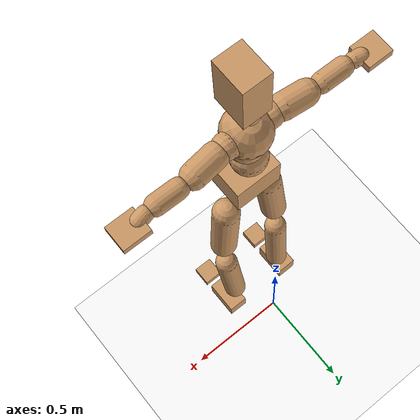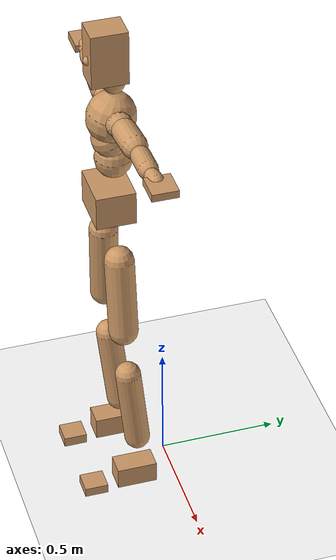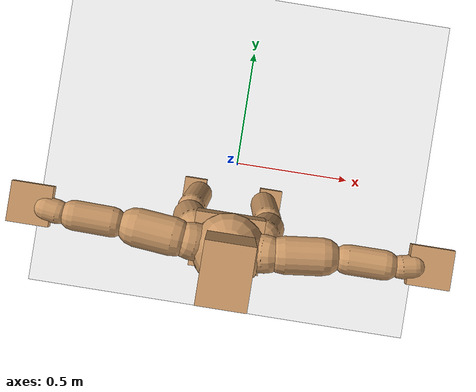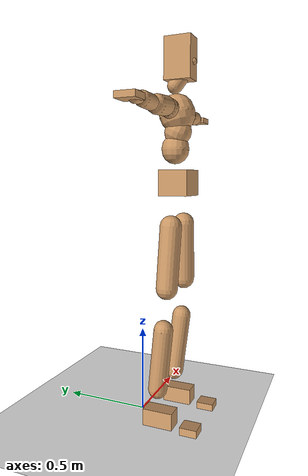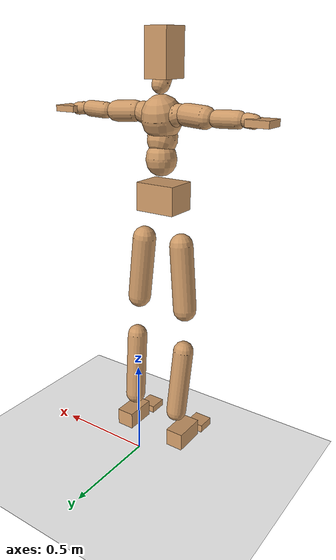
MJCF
<mujoco model="humanoid">
  <option integrator="implicitfast" />

  <visual>
    <global offwidth="1280" offheight="960" />
    <headlight active="1" ambient="0.34 0.34 0.34" diffuse="0.5 0.5 0.5" />
  </visual>

  <default>
    <joint damping="2" stiffness="2" armature="0.01" limited="true" solimplimit="0 .99 .01" />
    <geom condim="1" friction="0.7 0.005 0.0001" solimp=".99 .99 .003" solref="0.015 1" margin="0.001" rgba="0.8 0.6 .4 1" />
    <default class="smplcontact">
      <geom condim="3" friction="1. 0.005 0.0001" solref="0.015 1" solimp="0.98 0.98 0.001" priority="1" />
    </default>
    <default class="stiff_medium">
      <joint stiffness="10" />
    </default>
    <default class="stiff_medium_higher">
      <joint stiffness="50" />
    </default>
    <default class="stiff_high">
      <joint stiffness="100" />
    </default>
  </default>

  <asset>
    <texture type="skybox" builtin="gradient" rgb1="0.99 0.99 0.99" rgb2="0.608 0.828 0.892" width="100" />
    <texture builtin="flat" height="1278" mark="cross" markrgb="1 1 1" name="texgeom" random="0.01" rgb1="0.8 0.6 0.4" rgb2="0.8 0.6 0.4" type="cube" width="127" />
    <texture name="texplane" type="2d" builtin="checker" markrgb="1 1 1" rgb1="0.756 0.772 0.76" rgb2="0.6 0.6 0.6" width="100" height="100" />
    <material name="MatPlane" reflectance="0.5" texture="texplane" texrepeat="1 1" texuniform="true" />
    <material name="geom" texture="texgeom" texuniform="true" />
  </asset>

  <worldbody>
    <light name="tracking_light" pos="0 0 7" dir="0 0 -1" directional="true" cutoff="100" exponent="1" diffuse="1 1 1" specular="0.1 0.1 0.1" mode="trackcom" />
    <camera name="back" pos="0 3 2.4" xyaxes="-1 0 0 0 -1 2" mode="trackcom" />
    <camera name="side" pos="-3 0 2.4" xyaxes="0 -1 0 1 0 2" mode="trackcom" />
    <camera name="front_side" pos="-2.8 -2.8 0.8" xyaxes="0.5 -0.5 0 0.1 0.1 1" mode="trackcom" />
    <geom condim="3" name="floor" pos="0 0 0" rgba="1 1 1 1" size="100 100 .2" type="plane" material="MatPlane" />
    <body name="Pelvis" pos="-0.0018 -0.2233 1.39425" euler="90 0 0">
      <site name="Pelvis" size="0.01" />
      <freejoint name="Pelvis" />
      <geom type="box" pos="-0.0000 -0.0121 -0.0055" size="0.1069 0.0722 0.083" quat="1.0000 0.0000 0.0000 0.0000" density="3165.830099" name="Pelvis" />
      <body name="L_Hip" pos="0.10425 -0.1371 -0.0102">
        <joint name="L_Hip_x" type="hinge" pos="0 0 0" axis="1 0 0" stiffness="20.015620714285713" range="-160.0 22.92" class="stiff_medium" damping="35.83287359117287" armature="0.02851095036953482"/>
        <joint name="L_Hip_y" type="hinge" pos="0 0 0" axis="0 1 0" stiffness="19.866269693877552" range="-70.0 70.0" class="stiff_medium" damping="19.51687813836926" armature="0.019173631393182268"/>
        <joint name="L_Hip_z" type="hinge" pos="0 0 0" axis="0 0 1" stiffness="19.87905693877551" range="-28.65 90.0" class="stiff_medium" damping="23.812563344986483" armature="0.028524400066129184"/>
        <geom type="capsule" density="2040.816327" fromto="0.01035 -0.1125 -0.00135 0.0411 -0.4503 -0.0054" size="0.0615" name="L_Hip" />
        <body name="L_Knee" pos="0.05145 -0.5628 -0.00675">
          <joint name="L_Knee_x" type="hinge" pos="0 0 0" axis="1 0 0" range="-5.16 171.89" damping="17.990881080600367" armature="0.0263964285619257" stiffness="3.8318607346938776"/>
          <joint name="L_Knee_y" type="hinge" pos="0 0 0" axis="0 1 0" range="-4.58 6.88" damping="14.933138115539817" armature="0.017722990590982583" stiffness="3.932015113945578"/>
          <joint name="L_Knee_z" type="hinge" pos="0 0 0" axis="0 0 1" range="-6.88 4.58" damping="17.905219969869158" armature="0.02645515953053642" stiffness="3.7870318571428574"/>
          <geom type="capsule" density="1234.567901" fromto="-0.00405 -0.1194 -0.01305 -0.01635 -0.4776 -0.0525" size="0.0541" name="L_Knee" />
          <body name="L_Ankle" pos="-0.0204 -0.597 -0.06555">
            <joint name="L_Ankle_x" type="hinge" pos="0 0 0" axis="1 0 0" range="-45.84 45.84" class="stiff_medium" damping="9.919510798854759" armature="0.018221610090480775" stiffness="15.0"/>
            <joint name="L_Ankle_y" type="hinge" pos="0 0 0" axis="0 1 0" range="-74.48 22.92" class="stiff_medium" damping="4.917952818000751" armature="0.017915748088949288" stiffness="15.0"/>
            <joint name="L_Ankle_z" type="hinge" pos="0 0 0" axis="0 0 1" range="-4.58 4.58" class="stiff_medium" damping="9.269968981325242" armature="0.01591339350272818" stiffness="15.0"/>
            <geom type="box" pos="0.03495 -0.03585 0.0363" size="0.0483 0.0464 0.085" quat="1.0000 0.0000 0.0000 0.0000" density="449.071558" name="L_Ankle" class="smplcontact" />
            <body name="L_Toe" pos="0.0396 -0.0837 0.17895">
              <joint name="L_Toe_x" type="hinge" pos="0 0 0" axis="1 0 0" range="-91.67 22.92" armature="0.014752348892847546" damping="2.975131818207141" stiffness="3.0"/>
              <joint name="L_Toe_y" type="hinge" pos="0 0 0" axis="0 1 0" range="-4.58 4.58" armature="0.013348413454862132" damping="2.8300261611718858" stiffness="3.0"/>
              <joint name="L_Toe_z" type="hinge" pos="0 0 0" axis="0 0 1" range="-4.58 4.58" armature="0.010509731565731132" damping="2.5111429547994035" stiffness="3.0"/>
              <geom type="box" pos="-0.0045 0.00825 0.0372" size="0.0478 0.02 0.0496" quat="1.0000 0.0000 0.0000 0.0000" density="423.206892" name="L_Toe" class="smplcontact" />
            </body>
          </body>
        </body>
      </body>
      <body name="R_Hip" pos="-0.10155 -0.13575 -0.00645">
        <joint name="R_Hip_x" type="hinge" pos="0 0 0" axis="1 0 0" stiffness="20.015620714285713" range="-160.0 22.92" class="stiff_medium" damping="35.83287359117287" armature="0.02851095036953482"/>
        <joint name="R_Hip_y" type="hinge" pos="0 0 0" axis="0 1 0" stiffness="19.866269693877552" range="-70.0 70.0" class="stiff_medium" damping="19.51687813836926" armature="0.019173631393182268"/>
        <joint name="R_Hip_z" type="hinge" pos="0 0 0" axis="0 0 1" stiffness="19.87905693877551" range="-90.0 28.65" class="stiff_medium" damping="23.812563344986483" armature="0.028524400066129184"/>
        <geom type="capsule" density="2040.816327" fromto="-0.01155 -0.11475 -0.0027 -0.0459 -0.45915 -0.01065" size="0.0606" name="R_Hip" />
        <body name="R_Knee" pos="-0.05745 -0.5739 -0.01335">
          <joint name="R_Knee_x" type="hinge" pos="0 0 0" axis="1 0 0" range="-5.16 171.89" damping="17.990881080600367" armature="0.0263964285619257" stiffness="3.8318607346938776"/>
          <joint name="R_Knee_y" type="hinge" pos="0 0 0" axis="0 1 0" range="-6.88 4.58" damping="14.933138115539817" armature="0.017722990590982583" stiffness="3.932015113945578"/>
          <joint name="R_Knee_z" type="hinge" pos="0 0 0" axis="0 0 1" range="-4.58 6.88" damping="17.905219969869158" armature="0.02645515953053642" stiffness="3.7870318571428574"/>
          <geom type="capsule" density="1234.567901" fromto="0.0048 -0.11955 -0.01275 0.0189 -0.47805 -0.0507" size="0.0541" name="R_Knee" />
          <body name="R_Ankle" pos="0.0237 -0.5976 -0.06345">
            <joint name="R_Ankle_x" type="hinge" pos="0 0 0" axis="1 0 0" range="-45.84 45.84" class="stiff_medium" damping="9.919510798854759" armature="0.018221610090480775" stiffness="15.0"/>
            <joint name="R_Ankle_y" type="hinge" pos="0 0 0" axis="0 1 0" range="-22.92 74.48" class="stiff_medium" damping="4.917952818000751" armature="0.017915748088949288" stiffness="15.0"/>
            <joint name="R_Ankle_z" type="hinge" pos="0 0 0" axis="0 0 1" range="-4.58 4.58" class="stiff_medium" damping="9.269968981325242" armature="0.01591339350272818" stiffness="15.0"/>
            <geom type="box" pos="-0.0318 -0.0261 0.0384" size="0.0483 0.0478 0.0865" quat="1.0000 0.0000 0.0000 0.0000" density="434.700981" name="R_Ankle" class="smplcontact" />
            <body name="R_Toe" pos="-0.0381 -0.07215 0.18495">
              <joint name="R_Toe_x" type="hinge" pos="0 0 0" axis="1 0 0" range="-91.67 22.92" armature="0.014752348892847546" damping="2.975131818207141" stiffness="3.0"/>
              <joint name="R_Toe_y" type="hinge" pos="0 0 0" axis="0 1 0" range="-4.58 4.58" armature="0.013348413454862132" damping="2.8300261611718858" stiffness="3.0"/>
              <joint name="R_Toe_z" type="hinge" pos="0 0 0" axis="0 0 1" range="-4.58 4.58" armature="0.010509731565731132" damping="2.5111429547994035" stiffness="3.0"/>
              <geom type="box" pos="0.0063 0.00675 0.03405" size="0.0479 0.0216 0.0493" quat="1.0000 0.0000 0.0000 0.0000" density="407.384095" name="R_Toe" class="smplcontact" />
            </body>
          </body>
        </body>
      </body>
      <body name="Torso" pos="-0.0025 0.109 -0.0267">
        <joint name="Torso_x" type="hinge" pos="0 0 0" axis="1 0 0" range="-25.78 57.3" class="stiff_medium" damping="13.296564125699913" armature="0.008717287887859698" stiffness="9.01394612244898"/>
        <joint name="Torso_y" type="hinge" pos="0 0 0" axis="0 1 0" range="-57.3 57.3" class="stiff_high" damping="11.857975578739207" armature="0.003844721181114158" stiffness="91.43158775510203"/>
        <joint name="Torso_z" type="hinge" pos="0 0 0" axis="0 0 1" range="-34.38 34.38" class="stiff_high" damping="16.193220219297853" armature="0.007045583299802339" stiffness="93.0442413043478"/>
        <geom type="capsule" density="2040.816327" fromto="0.0025 0.0608 0.0005 0.003 0.0743 0.0006" size="0.0769" name="Torso" />
        <body name="Spine" pos="0.0055 0.1352 0.0011">
          <joint name="Spine_x" type="hinge" pos="0 0 0" axis="1 0 0" stiffness="8.855082083333333" range="-25.78 57.3" class="stiff_medium" damping="13.07679767745399" armature="0.008582774445870411"/>
          <joint name="Spine_y" type="hinge" pos="0 0 0" axis="0 1 0" stiffness="8.966550425531915" range="-57.3 57.3" class="stiff_high" damping="4.670538649446805" armature="0.0038012687155206805"/>
          <joint name="Spine_z" type="hinge" pos="0 0 0" axis="0 0 1" stiffness="17.399179999999998" range="-34.38 34.38" class="stiff_high" damping="8.612389288095054" armature="0.0059208768307291906"/>
          <geom type="capsule" density="2040.816327" fromto="0.0007 0.0238 0.0114 0.0008 0.0291 0.014" size="0.0755" name="Spine" />
          <body name="Chest" pos="0.0015 0.0529 0.0254">
            <joint name="Chest_x" type="hinge" pos="0 0 0" axis="1 0 0" stiffness="8.445605217391304" range="-25.78 57.3" class="stiff_medium" damping="12.72528360118801" armature="0.008521609816255427"/>
            <joint name="Chest_y" type="hinge" pos="0 0 0" axis="0 1 0" stiffness="7.416513142857141" range="-57.3 57.3" class="stiff_high" damping="4.235867490218071" armature="0.0037801147775485618"/>
            <joint name="Chest_z" type="hinge" pos="0 0 0" axis="0 0 1" stiffness="17.461715111111108" range="-34.38 34.38" class="stiff_high" damping="8.265316118618488" armature="0.005433748608980236"/>
            <geom type="capsule" density="2040.816327" fromto="-0.0009 0.0682 -0.0173 -0.001 0.0833 -0.0212" size="0.1002" name="Chest" />
            <body name="Neck" pos="-0.0028 0.2139 -0.0429">
              <joint name="Neck_x" type="hinge" pos="0 0 0" axis="1 0 0" range="-28.65 57.3" class="stiff_medium_higher" damping="9.999999999999986" armature="0.00999999999999997" stiffness="50.0"/>
              <joint name="Neck_y" type="hinge" pos="0 0 0" axis="0 1 0" range="-40.11 40.11" class="stiff_medium_higher" damping="10.0" armature="0.01" stiffness="50.0"/>
              <joint name="Neck_z" type="hinge" pos="0 0 0" axis="0 0 1" range="-40.11 40.11" class="stiff_medium_higher" damping="10.00000000000001" armature="0.010000000000000024" stiffness="50.0"/>
              <geom type="capsule" density="1000" fromto="0.001 0.013 0.0103 0.0041 0.052 0.0411" size="0.0436" name="Neck" />
              <body name="Head" pos="0.0052 0.065 0.0513">
                <joint name="Head_x" type="hinge" pos="0 0 0" axis="1 0 0" range="-28.65 57.3" class="stiff_medium_higher" damping="2.000000000000001" armature="0.010000000000000009" stiffness="50.0"/>
                <joint name="Head_y" type="hinge" pos="0 0 0" axis="0 1 0" range="-40.11 40.11" class="stiff_medium_higher" damping="2.0" armature="0.01" stiffness="50.0"/>
                <joint name="Head_z" type="hinge" pos="0 0 0" axis="0 0 1" range="-40.11 40.11" class="stiff_medium_higher" damping="2.0000000000000093" armature="0.010000000000000094" stiffness="50.0"/>
                <geom type="box" pos="-0.0042 0.0876 -0.0116" size="0.0606 0.1154 0.076" quat="1.0000 0.0000 0.0000 0.0000" density="1018.069894" name="Head" />
                <geom type="capsule" name="nose" size="0.02 0.01" pos="0 0.07 0.05" quat="1 0 0 0" mass="0" contype="0" conaffinity="0" />
              </body>
            </body>
            <body name="L_Thorax" pos="0.052205 0.0806262 -0.0225912">
              <joint name="L_Thorax_x" type="hinge" pos="0 0 0" axis="1 0 0" range="-10.89 4.58" class="stiff_medium_higher" damping="10.752161019344701" armature="0.005492534491244019" stiffness="26.310478061224497"/>
              <joint name="L_Thorax_y" type="hinge" pos="0 0 0" axis="0 1 0" range="-28.65 17.19" class="stiff_medium_higher" damping="8.656507675839674" armature="0.003599090918613797" stiffness="26.025712755102038"/>
              <joint name="L_Thorax_z" type="hinge" pos="0 0 0" axis="0 0 1" range="-31.51 40.11" class="stiff_medium_higher" damping="8.654936190408641" armature="0.003597349455452552" stiffness="26.02885867346939"/>
              <geom type="capsule" density="1000" fromto="0.0120575 0.00404125 -0.0011925 0.04823 0.016165 -0.00470375" size="0.0521" name="L_Thorax" />
              <body name="L_Shoulder" pos="0.0602875 0.0202062 -0.00589625">
                <joint name="L_Shoulder_x" type="hinge" pos="0 0 0" axis="1 0 0" range="-97.4 97.4" class="stiff_medium" damping="3.4355706113714275" armature="0.00618147417805869" stiffness="5.3039961224489796"/>
                <joint name="L_Shoulder_y" type="hinge" pos="0 0 0" axis="0 1 0" range="-108.86 80.21" class="stiff_medium" damping="2.619467278569036" armature="0.0036469302510571877" stiffness="5.226319999999999"/>
                <joint name="L_Shoulder_z" type="hinge" pos="0 0 0" axis="0 0 1" range="-97.4 85.94" class="stiff_medium" damping="2.6197349169276207" armature="0.003644479893049839" stiffness="5.230902653061225"/>
                <geom type="capsule" density="1000" fromto="0.0343837 -0.0017225 -0.00364375 0.137601 -0.0067575 -0.014575" size="0.0517" name="L_Shoulder" />
                <body name="L_Elbow" pos="0.171985 -0.00848 -0.0182187">
                  <joint name="L_Elbow_x" type="hinge" pos="0 0 0" axis="1 0 0" range="-17.19 4.58" damping="3.1785577743546716" armature="0.007393662378868674" stiffness="1.0931772653061227"/>
                  <joint name="L_Elbow_y" type="hinge" pos="0 0 0" axis="0 1 0" range="-180.0 17.19" damping="2.3033030607353284" armature="0.003885042260915374" stiffness="1.0924370204081633"/>
                  <joint name="L_Elbow_z" type="hinge" pos="0 0 0" axis="0 0 1" range="-100.84 4.58" damping="2.3008114328593727" armature="0.003872178345233718" stiffness="1.0936961632653062"/>
                  <geom type="capsule" density="1000" fromto="0.0329925 0.0011925 -0.0001325 0.132102 0.00477 -0.00059625" size="0.0405" name="L_Elbow" />
                  <body name="L_Wrist" pos="0.165095 0.0059625 -0.000795">
                    <joint name="L_Wrist_x" type="hinge" pos="0 0 0" axis="1 0 0" range="-180.0 22.92" armature="0.008001427855742892" damping="1.4109622696559756" stiffness="1.2440370408163264"/>
                    <joint name="L_Wrist_y" type="hinge" pos="0 0 0" axis="0 1 0" range="-17.19 17.19" armature="0.004879471429003507" damping="1.0965644446974563" stiffness="1.2321555714285712"/>
                    <joint name="L_Wrist_z" type="hinge" pos="0 0 0" axis="0 0 1" range="-22.92 22.92" armature="0.004698864868438875" damping="1.0781698402208924" stiffness="1.2369478979591837"/>
                    <geom type="capsule" density="1000" fromto="0.01113 -0.00106 -0.0019875 0.04452 -0.00430625 -0.00795" size="0.0318" name="L_Wrist" class="smplcontact" />
                    <body name="L_Hand" pos="0.05565 -0.0054325 -0.00987125">
                      <joint name="L_Hand_x" type="hinge" pos="0 0 0" axis="1 0 0" range="-17.19 17.19" armature="0.00975555299620373" damping="1.6078618449167639" stiffness="1.3249990612244895"/>
                      <joint name="L_Hand_y" type="hinge" pos="0 0 0" axis="0 1 0" range="-51.57 51.57" armature="0.007043747166286243" damping="1.3662326477640614" stiffness="1.3249990408163264"/>
                      <joint name="L_Hand_z" type="hinge" pos="0 0 0" axis="0 0 1" range="-91.67 91.67" armature="0.006320878329522906" damping="1.2942300773617896" stiffness="1.3249989999999998"/>
                      <geom type="box" pos="0.0326612 0.0006625 -0.0038425" size="0.0585 0.0158 0.0538" quat="1.0000 0.0000 0.0000 0.0000" density="400.552564" name="L_Hand" class="smplcontact" />
                    </body>
                  </body>
                </body>
              </body>
            </body>
            <body name="R_Thorax" pos="-0.0541925 0.078705 -0.0255725">
              <joint name="R_Thorax_x" type="hinge" pos="0 0 0" axis="1 0 0" range="-10.89 4.58" class="stiff_medium_higher" damping="10.752161019344701" armature="0.005492534491244019" stiffness="26.310478061224497"/>
              <joint name="R_Thorax_y" type="hinge" pos="0 0 0" axis="0 1 0" range="-17.19 28.65" class="stiff_medium_higher" damping="8.656507675839674" armature="0.003599090918613797" stiffness="26.025712755102038"/>
              <joint name="R_Thorax_z" type="hinge" pos="0 0 0" axis="0 0 1" range="-40.11 31.51" class="stiff_medium_higher" damping="8.654936190408641" armature="0.003597349455452552" stiffness="26.02885867346939"/>
              <geom type="capsule" density="1000" fromto="-0.01272 0.00430625 -0.0011925 -0.05088 0.017225 -0.00483625" size="0.0511" name="R_Thorax" />
              <body name="R_Shoulder" pos="-0.0636 0.0215975 -0.00602875">
                <joint name="R_Shoulder_x" type="hinge" pos="0 0 0" axis="1 0 0" range="-97.4 97.4" class="stiff_medium" damping="3.4355706113714275" armature="0.00618147417805869" stiffness="5.3039961224489796"/>
                <joint name="R_Shoulder_y" type="hinge" pos="0 0 0" axis="0 1 0" range="-80.21 108.86" class="stiff_medium" damping="2.619467278569036" armature="0.0036469302510571877" stiffness="5.226319999999999"/>
                <joint name="R_Shoulder_z" type="hinge" pos="0 0 0" axis="0 0 1" range="-85.94 97.4" class="stiff_medium" damping="2.6197349169276207" armature="0.003644479893049839" stiffness="5.230902653061225"/>
                <geom type="capsule" density="1000" fromto="-0.0335888 -0.00178875 -0.00284875 -0.134488 -0.00708875 -0.0113288" size="0.0531" name="R_Shoulder" />
                <body name="R_Elbow" pos="-0.168076 -0.00881125 -0.0141775">
                  <joint name="R_Elbow_x" type="hinge" pos="0 0 0" axis="1 0 0" range="-17.19 4.58" damping="3.1785577743546716" armature="0.007393662378868674" stiffness="1.0931772653061227"/>
                  <joint name="R_Elbow_y" type="hinge" pos="0 0 0" axis="0 1 0" range="-17.19 180.0" damping="2.3033030607353284" armature="0.003885042260915374" stiffness="1.0924370204081633"/>
                  <joint name="R_Elbow_z" type="hinge" pos="0 0 0" axis="0 0 1" range="-4.58 100.84" damping="2.3008114328593727" armature="0.003872178345233718" stiffness="1.0936961632653062"/>
                  <geom type="capsule" density="1000" fromto="-0.0338538 0.00106 -0.00072875 -0.135282 0.0041075 -0.002915" size="0.0408" name="R_Elbow" />
                  <body name="R_Wrist" pos="-0.169136 0.0051675 -0.00371">
                    <joint name="R_Wrist_x" type="hinge" pos="0 0 0" axis="1 0 0" range="-180.0 22.92" armature="0.008001427855742892" damping="1.4109622696559756" stiffness="1.2440370408163264"/>
                    <joint name="R_Wrist_y" type="hinge" pos="0 0 0" axis="0 1 0" range="-17.19 17.19" armature="0.004879471429003507" damping="1.0965644446974563" stiffness="1.2321555714285712"/>
                    <joint name="R_Wrist_z" type="hinge" pos="0 0 0" axis="0 0 1" range="-22.92 22.92" armature="0.004698864868438875" damping="1.0781698402208924" stiffness="1.2369478979591837"/>
                    <geom type="capsule" density="1000" fromto="-0.0111962 -0.000795 -0.00139125 -0.0448512 -0.00324625 -0.00549875" size="0.0326" name="R_Wrist" class="smplcontact" />
                    <body name="R_Hand" pos="-0.0560475 -0.00404125 -0.00682375">
                      <joint name="R_Hand_x" type="hinge" pos="0 0 0" axis="1 0 0" range="-17.19 17.19" armature="0.00975555299620373" damping="1.6078618449167639" stiffness="1.3249990612244895"/>
                      <joint name="R_Hand_y" type="hinge" pos="0 0 0" axis="0 1 0" range="-51.57 51.57" armature="0.007043747166286243" damping="1.3662326477640614" stiffness="1.3249990408163264"/>
                      <joint name="R_Hand_z" type="hinge" pos="0 0 0" axis="0 0 1" range="-91.67 91.67" armature="0.006320878329522906" damping="1.2942300773617896" stiffness="1.3249989999999998"/>
                      <geom type="box" pos="-0.0306075 -0.00059625 -0.00523375" size="0.0569 0.0164 0.0546" quat="1.0000 0.0000 0.0000 0.0000" density="403.679611" name="R_Hand" class="smplcontact" />
                    </body>
                  </body>
                </body>
              </body>
            </body>
          </body>
        </body>
      </body>
    </body>
  </worldbody>
  <actuator>
    <general name="L_Hip_x" joint="L_Hip_x" biastype="affine" gainprm="575.1089582783409" biasprm="-430.985873610294 -360.28117285714285 -4.7777164788230495" ctrllimited="true" ctrlrange="-1 1" forcerange="-720.5623457142857 720.5623457142857" />
    <general name="L_Hip_y" joint="L_Hip_y" biastype="affine" gainprm="436.88208847163486" biasprm="0.0 -357.5928544897959 -3.9033756276738525" ctrllimited="true" ctrlrange="-1 1" forcerange="-715.1857089795918 715.1857089795918" />
    <general name="L_Hip_z" joint="L_Hip_z" biastype="affine" gainprm="370.49589223625946" biasprm="191.57120091609366 -357.82302489795916 -4.762512668997297" ctrllimited="true" ctrlrange="-1 1" forcerange="-715.6460497959183 715.6460497959183" />
    <general name="L_Knee_x" joint="L_Knee_x" biastype="affine" gainprm="532.8384166851074" biasprm="501.7800012081782 -344.867466122449 -4.497720270150092" ctrllimited="true" ctrlrange="-1 1" forcerange="-689.734932244898 689.734932244898" />
    <general name="L_Knee_y" joint="L_Knee_y" biastype="affine" gainprm="35.39074276489669" biasprm="7.10285413257089 -353.88136025510204 -3.7332845288849543" ctrllimited="true" ctrlrange="-1 1" forcerange="-707.7627205102041 707.7627205102041" />
    <general name="L_Knee_z" joint="L_Knee_z" biastype="affine" gainprm="34.085797336654615" biasprm="-6.840954090253544 -340.83286714285714 -4.4763049924672895" ctrllimited="true" ctrlrange="-1 1" forcerange="-681.6657342857143 681.6657342857143" />
    <general name="L_Ankle_x" joint="L_Ankle_x" biastype="affine" gainprm="108.0079554304171" biasprm="0.0 -135.0 -3.306503599618253" ctrllimited="true" ctrlrange="-1 1" forcerange="-270.0 270.0" />
    <general name="L_Ankle_y" joint="L_Ankle_y" biastype="affine" gainprm="114.74667167236721" biasprm="-60.742693957158664 -135.0 -3.278635212000501" ctrllimited="true" ctrlrange="-1 1" forcerange="-270.0 270.0" />
    <general name="L_Ankle_z" joint="L_Ankle_z" biastype="affine" gainprm="10.791370765080938" biasprm="0.0 -135.0 -3.0899896604417476" ctrllimited="true" ctrlrange="-1 1" forcerange="-270.0 270.0" />
    <general name="L_Toe_x" joint="L_Toe_x" biastype="affine" gainprm="107.99853065245631" biasprm="-64.79534848028948 -108.0 -1.1900527272828565" ctrllimited="true" ctrlrange="-1 1" forcerange="-216.0 216.0" />
    <general name="L_Toe_y" joint="L_Toe_y" biastype="affine" gainprm="8.633096612064751" biasprm="0.0 -108.0 -1.1320104644687543" ctrllimited="true" ctrlrange="-1 1" forcerange="-216.0 216.0" />
    <general name="L_Toe_z" joint="L_Toe_z" biastype="affine" gainprm="8.633096612064751" biasprm="0.0 -108.0 -1.0044571819197614" ctrllimited="true" ctrlrange="-1 1" forcerange="-216.0 216.0" />
    <general name="R_Hip_x" joint="R_Hip_x" biastype="affine" gainprm="575.1089582783409" biasprm="-430.985873610294 -360.28117285714285 -4.7777164788230495" ctrllimited="true" ctrlrange="-1 1" forcerange="-720.5623457142857 720.5623457142857" />
    <general name="R_Hip_y" joint="R_Hip_y" biastype="affine" gainprm="436.88208847163486" biasprm="0.0 -357.5928544897959 -3.9033756276738525" ctrllimited="true" ctrlrange="-1 1" forcerange="-715.1857089795918 715.1857089795918" />
    <general name="R_Hip_z" joint="R_Hip_z" biastype="affine" gainprm="370.49589223625946" biasprm="-191.57120091609366 -357.82302489795916 -4.762512668997297" ctrllimited="true" ctrlrange="-1 1" forcerange="-715.6460497959183 715.6460497959183" />
    <general name="R_Knee_x" joint="R_Knee_x" biastype="affine" gainprm="532.8384166851074" biasprm="501.7800012081782 -344.867466122449 -4.497720270150092" ctrllimited="true" ctrlrange="-1 1" forcerange="-689.734932244898 689.734932244898" />
    <general name="R_Knee_y" joint="R_Knee_y" biastype="affine" gainprm="35.39074276489669" biasprm="-7.10285413257089 -353.88136025510204 -3.7332845288849543" ctrllimited="true" ctrlrange="-1 1" forcerange="-707.7627205102041 707.7627205102041" />
    <general name="R_Knee_z" joint="R_Knee_z" biastype="affine" gainprm="34.085797336654615" biasprm="6.840954090253544 -340.83286714285714 -4.4763049924672895" ctrllimited="true" ctrlrange="-1 1" forcerange="-681.6657342857143 681.6657342857143" />
    <general name="R_Ankle_x" joint="R_Ankle_x" biastype="affine" gainprm="108.0079554304171" biasprm="0.0 -135.0 -3.306503599618253" ctrllimited="true" ctrlrange="-1 1" forcerange="-270.0 270.0" />
    <general name="R_Ankle_y" joint="R_Ankle_y" biastype="affine" gainprm="114.74667167236721" biasprm="60.742693957158664 -135.0 -3.278635212000501" ctrllimited="true" ctrlrange="-1 1" forcerange="-270.0 270.0" />
    <general name="R_Ankle_z" joint="R_Ankle_z" biastype="affine" gainprm="10.791370765080938" biasprm="0.0 -135.0 -3.0899896604417476" ctrllimited="true" ctrlrange="-1 1" forcerange="-270.0 270.0" />
    <general name="R_Toe_x" joint="R_Toe_x" biastype="affine" gainprm="107.99853065245631" biasprm="-64.79534848028948 -108.0 -1.1900527272828565" ctrllimited="true" ctrlrange="-1 1" forcerange="-216.0 216.0" />
    <general name="R_Toe_y" joint="R_Toe_y" biastype="affine" gainprm="8.633096612064751" biasprm="0.0 -108.0 -1.1320104644687543" ctrllimited="true" ctrlrange="-1 1" forcerange="-216.0 216.0" />
    <general name="R_Toe_z" joint="R_Toe_z" biastype="affine" gainprm="8.633096612064751" biasprm="0.0 -108.0 -1.0044571819197614" ctrllimited="true" ctrlrange="-1 1" forcerange="-216.0 216.0" />
    <general name="Torso_x" joint="Torso_x" biastype="affine" gainprm="156.84477639727098" biasprm="59.505866057318 -216.33470693877553 -3.5457504335199768" ctrllimited="true" ctrlrange="-1 1" forcerange="-324.5020604081633 324.5020604081633" />
    <general name="Torso_y" joint="Torso_y" biastype="affine" gainprm="219.45197455967397" biasprm="0.0 -219.43581061224486 -2.3715951157478417" ctrllimited="true" ctrlrange="-1 1" forcerange="-329.1537159183673 329.1537159183673" />
    <general name="Torso_z" joint="Torso_z" biastype="affine" gainprm="133.99357690475964" biasprm="0.0 -223.30617913043474 -3.2386440438595705" ctrllimited="true" ctrlrange="-1 1" forcerange="-334.9592686956521 334.9592686956521" />
    <general name="Spine_x" joint="Spine_x" biastype="affine" gainprm="154.08050486134445" biasprm="58.457119802955894 -212.52197 -3.487146047321064" ctrllimited="true" ctrlrange="-1 1" forcerange="-318.782955 318.782955" />
    <general name="Spine_y" joint="Spine_y" biastype="affine" gainprm="215.21306193898633" biasprm="0.0 -215.19721021276595 -2.3352693247234027" ctrllimited="true" ctrlrange="-1 1" forcerange="-322.7958153191489 322.7958153191489" />
    <general name="Spine_z" joint="Spine_z" biastype="affine" gainprm="125.28332386438697" biasprm="0.0 -208.79016 -2.870796429365018" ctrllimited="true" ctrlrange="-1 1" forcerange="-313.18523999999996 313.18523999999996" />
    <general name="Chest_x" joint="Chest_x" biastype="affine" gainprm="146.95551136725376" biasprm="55.753944611168 -202.69452521739132 -3.393408960316803" ctrllimited="true" ctrlrange="-1 1" forcerange="-304.04178782608693 304.04178782608693" />
    <general name="Chest_y" joint="Chest_y" biastype="affine" gainprm="178.00942688507038" biasprm="0.0 -177.9963154285714 -2.1179337451090356" ctrllimited="true" ctrlrange="-1 1" forcerange="-266.9944731428571 266.9944731428571" />
    <general name="Chest_z" joint="Chest_z" biastype="affine" gainprm="125.7336098306353" biasprm="0.0 -209.5405813333333 -2.7551053728728294" ctrllimited="true" ctrlrange="-1 1" forcerange="-314.31087199999996 314.31087199999996" />
    <general name="Neck_x" joint="Neck_x" biastype="affine" gainprm="27.00198885760427" biasprm="9.000662952534757 -36.0 -0.7999999999999989" ctrllimited="true" ctrlrange="-1 1" forcerange="-72.0 72.0" />
    <general name="Neck_y" joint="Neck_y" biastype="affine" gainprm="25.20185626709732" biasprm="0.0 -36.0 -0.8" ctrllimited="true" ctrlrange="-1 1" forcerange="-72.0 72.0" />
    <general name="Neck_z" joint="Neck_z" biastype="affine" gainprm="25.20185626709732" biasprm="0.0 -36.0 -0.8000000000000009" ctrllimited="true" ctrlrange="-1 1" forcerange="-72.0 72.0" />
    <general name="Head_x" joint="Head_x" biastype="affine" gainprm="18.001325905069514" biasprm="6.000441968356505 -24.0 -0.8000000000000004" ctrllimited="true" ctrlrange="-1 1" forcerange="-48.0 48.0" />
    <general name="Head_y" joint="Head_y" biastype="affine" gainprm="16.801237511398213" biasprm="0.0 -24.0 -0.8" ctrllimited="true" ctrlrange="-1 1" forcerange="-48.0 48.0" />
    <general name="Head_z" joint="Head_z" biastype="affine" gainprm="16.801237511398213" biasprm="0.0 -24.0 -0.8000000000000038" ctrllimited="true" ctrlrange="-1 1" forcerange="-48.0 48.0" />
    <general name="L_Thorax_x" joint="L_Thorax_x" biastype="affine" gainprm="8.524671780005175" biasprm="-3.4770962464015946 -63.14514734693879 -0.8601728815475762" ctrllimited="true" ctrlrange="-1 1" forcerange="-126.29029469387758 126.29029469387758" />
    <general name="L_Thorax_y" joint="L_Thorax_y" biastype="affine" gainprm="24.98652465153687" biasprm="-6.246631162884218 -62.461710612244886 -0.692520614067174" ctrllimited="true" ctrlrange="-1 1" forcerange="-124.92342122448977 124.92342122448977" />
    <general name="L_Thorax_z" joint="L_Thorax_z" biastype="affine" gainprm="39.04343825747016" biasprm="4.688265414887508 -62.46926081632654 -0.6923948952326913" ctrllimited="true" ctrlrange="-1 1" forcerange="-124.93852163265308 124.93852163265308" />
    <general name="L_Shoulder_x" joint="L_Shoulder_x" biastype="affine" gainprm="43.279353003673734" biasprm="0.0 -25.459181387755102 -0.9161521630323807" ctrllimited="true" ctrlrange="-1 1" forcerange="-50.918362775510204 50.918362775510204" />
    <general name="L_Shoulder_y" joint="L_Shoulder_y" biastype="affine" gainprm="41.39112503423586" biasprm="-6.272045973612193 -25.086336 -0.6985246076184097" ctrllimited="true" ctrlrange="-1 1" forcerange="-50.172672 50.172672" />
    <general name="L_Shoulder_z" joint="L_Shoulder_z" biastype="affine" gainprm="40.171909368365355" biasprm="-2.511018224945282 -25.108332734693878 -0.6985959778473656" ctrllimited="true" ctrlrange="-1 1" forcerange="-50.216665469387756 50.216665469387756" />
    <general name="L_Elbow_x" joint="L_Elbow_x" biastype="affine" gainprm="7.476509558353197" biasprm="-4.330674576519699 -39.35438155102042 -0.5085692438967475" ctrllimited="true" ctrlrange="-1 1" forcerange="-78.70876310204083 78.70876310204083" />
    <general name="L_Elbow_y" joint="L_Elbow_y" biastype="affine" gainprm="67.67545257136767" biasprm="-55.87626367028943 -39.327732734693875 -0.36852848971765256" ctrllimited="true" ctrlrange="-1 1" forcerange="-78.65546546938775 78.65546546938775" />
    <general name="L_Elbow_z" joint="L_Elbow_z" biastype="affine" gainprm="36.22176204255759" biasprm="-33.07443382865295 -39.373061877551024 -0.36812982925749965" ctrllimited="true" ctrlrange="-1 1" forcerange="-78.74612375510205 78.74612375510205" />
    <general name="L_Wrist_x" joint="L_Wrist_x" biastype="affine" gainprm="13.217727298647333" biasprm="-10.231818470685607 -7.464222244897958 -0.5643849078623903" ctrllimited="true" ctrlrange="-1 1" forcerange="-14.928444489795917 14.928444489795917" />
    <general name="L_Wrist_y" joint="L_Wrist_y" biastype="affine" gainprm="2.2180434007032876" biasprm="0.0 -7.392933428571427 -0.43862577787898255" ctrllimited="true" ctrlrange="-1 1" forcerange="-14.785866857142855 14.785866857142855" />
    <general name="L_Wrist_z" joint="L_Wrist_z" biastype="affine" gainprm="2.9688936318338586" biasprm="0.0 -7.421687387755102 -0.43126793608835695" ctrllimited="true" ctrlrange="-1 1" forcerange="-14.843374775510204 14.843374775510204" />
    <general name="L_Hand_x" joint="L_Hand_x" biastype="affine" gainprm="2.38517399250132" biasprm="0.0 -7.949994367346937 -0.6431447379667056" ctrllimited="true" ctrlrange="-1 1" forcerange="-15.899988734693874 15.899988734693874" />
    <general name="L_Hand_y" joint="L_Hand_y" biastype="affine" gainprm="7.155521867291758" biasprm="0.0 -7.949994244897958 -0.5464930591056246" ctrllimited="true" ctrlrange="-1 1" forcerange="-15.899988489795916 15.899988489795916" />
    <general name="L_Hand_z" joint="L_Hand_z" biastype="affine" gainprm="12.7195398365005" biasprm="0.0 -7.9499939999999985 -0.5176920309447158" ctrllimited="true" ctrlrange="-1 1" forcerange="-15.899987999999997 15.899987999999997" />
    <general name="R_Thorax_x" joint="R_Thorax_x" biastype="affine" gainprm="8.524671780005175" biasprm="-3.4770962464015946 -63.14514734693879 -0.8601728815475762" ctrllimited="true" ctrlrange="-1 1" forcerange="-126.29029469387758 126.29029469387758" />
    <general name="R_Thorax_y" joint="R_Thorax_y" biastype="affine" gainprm="24.98652465153687" biasprm="6.246631162884214 -62.461710612244886 -0.692520614067174" ctrllimited="true" ctrlrange="-1 1" forcerange="-124.92342122448977 124.92342122448977" />
    <general name="R_Thorax_z" joint="R_Thorax_z" biastype="affine" gainprm="39.04343825747016" biasprm="-4.688265414887508 -62.46926081632654 -0.6923948952326913" ctrllimited="true" ctrlrange="-1 1" forcerange="-124.93852163265308 124.93852163265308" />
    <general name="R_Shoulder_x" joint="R_Shoulder_x" biastype="affine" gainprm="43.279353003673734" biasprm="0.0 -25.459181387755102 -0.9161521630323807" ctrllimited="true" ctrlrange="-1 1" forcerange="-50.918362775510204 50.918362775510204" />
    <general name="R_Shoulder_y" joint="R_Shoulder_y" biastype="affine" gainprm="41.39112503423586" biasprm="6.272045973612193 -25.086336 -0.6985246076184097" ctrllimited="true" ctrlrange="-1 1" forcerange="-50.172672 50.172672" />
    <general name="R_Shoulder_z" joint="R_Shoulder_z" biastype="affine" gainprm="40.171909368365355" biasprm="2.5110182249452766 -25.108332734693878 -0.6985959778473656" ctrllimited="true" ctrlrange="-1 1" forcerange="-50.216665469387756 50.216665469387756" />
    <general name="R_Elbow_x" joint="R_Elbow_x" biastype="affine" gainprm="7.476509558353197" biasprm="-4.330674576519699 -39.35438155102042 -0.5085692438967475" ctrllimited="true" ctrlrange="-1 1" forcerange="-78.70876310204083 78.70876310204083" />
    <general name="R_Elbow_y" joint="R_Elbow_y" biastype="affine" gainprm="67.67545257136767" biasprm="55.87626367028943 -39.327732734693875 -0.36852848971765256" ctrllimited="true" ctrlrange="-1 1" forcerange="-78.65546546938775 78.65546546938775" />
    <general name="R_Elbow_z" joint="R_Elbow_z" biastype="affine" gainprm="36.22176204255759" biasprm="33.07443382865295 -39.373061877551024 -0.36812982925749965" ctrllimited="true" ctrlrange="-1 1" forcerange="-78.74612375510205 78.74612375510205" />
    <general name="R_Wrist_x" joint="R_Wrist_x" biastype="affine" gainprm="13.217727298647333" biasprm="-10.231818470685607 -7.464222244897958 -0.5643849078623903" ctrllimited="true" ctrlrange="-1 1" forcerange="-14.928444489795917 14.928444489795917" />
    <general name="R_Wrist_y" joint="R_Wrist_y" biastype="affine" gainprm="2.2180434007032876" biasprm="0.0 -7.392933428571427 -0.43862577787898255" ctrllimited="true" ctrlrange="-1 1" forcerange="-14.785866857142855 14.785866857142855" />
    <general name="R_Wrist_z" joint="R_Wrist_z" biastype="affine" gainprm="2.9688936318338586" biasprm="0.0 -7.421687387755102 -0.43126793608835695" ctrllimited="true" ctrlrange="-1 1" forcerange="-14.843374775510204 14.843374775510204" />
    <general name="R_Hand_x" joint="R_Hand_x" biastype="affine" gainprm="2.38517399250132" biasprm="0.0 -7.949994367346937 -0.6431447379667056" ctrllimited="true" ctrlrange="-1 1" forcerange="-15.899988734693874 15.899988734693874" />
    <general name="R_Hand_y" joint="R_Hand_y" biastype="affine" gainprm="7.155521867291758" biasprm="0.0 -7.949994244897958 -0.5464930591056246" ctrllimited="true" ctrlrange="-1 1" forcerange="-15.899988489795916 15.899988489795916" />
    <general name="R_Hand_z" joint="R_Hand_z" biastype="affine" gainprm="12.7195398365005" biasprm="0.0 -7.9499939999999985 -0.5176920309447158" ctrllimited="true" ctrlrange="-1 1" forcerange="-15.899987999999997 15.899987999999997" />
  </actuator>
  <contact>
    <exclude body1="Torso" body2="Chest" />
    <exclude body1="Head" body2="Chest" />
    <exclude body1="R_Knee" body2="R_Toe" />
    <exclude body1="R_Knee" body2="L_Ankle" />
    <exclude body1="R_Knee" body2="L_Toe" />
    <exclude body1="L_Knee" body2="L_Toe" />
    <exclude body1="L_Knee" body2="R_Ankle" />
    <exclude body1="L_Knee" body2="R_Toe" />
    <exclude body1="L_Shoulder" body2="Chest" />
    <exclude body1="R_Shoulder" body2="Chest" />
  </contact>
  <sensor>
    <framelinvel name="sensor_Pelvis_framelinvel" objtype="xbody" objname="Pelvis" />
    <framelinvel name="sensor_L_Hip_framelinvel" objtype="xbody" objname="L_Hip" />
    <framelinvel name="sensor_L_Knee_framelinvel" objtype="xbody" objname="L_Knee" />
    <framelinvel name="sensor_L_Ankle_framelinvel" objtype="xbody" objname="L_Ankle" />
    <framelinvel name="sensor_L_Toe_framelinvel" objtype="xbody" objname="L_Toe" />
    <framelinvel name="sensor_R_Hip_framelinvel" objtype="xbody" objname="R_Hip" />
    <framelinvel name="sensor_R_Knee_framelinvel" objtype="xbody" objname="R_Knee" />
    <framelinvel name="sensor_R_Ankle_framelinvel" objtype="xbody" objname="R_Ankle" />
    <framelinvel name="sensor_R_Toe_framelinvel" objtype="xbody" objname="R_Toe" />
    <framelinvel name="sensor_Torso_framelinvel" objtype="xbody" objname="Torso" />
    <framelinvel name="sensor_Spine_framelinvel" objtype="xbody" objname="Spine" />
    <framelinvel name="sensor_Chest_framelinvel" objtype="xbody" objname="Chest" />
    <framelinvel name="sensor_Neck_framelinvel" objtype="xbody" objname="Neck" />
    <framelinvel name="sensor_Head_framelinvel" objtype="xbody" objname="Head" />
    <framelinvel name="sensor_L_Thorax_framelinvel" objtype="xbody" objname="L_Thorax" />
    <framelinvel name="sensor_L_Shoulder_framelinvel" objtype="xbody" objname="L_Shoulder" />
    <framelinvel name="sensor_L_Elbow_framelinvel" objtype="xbody" objname="L_Elbow" />
    <framelinvel name="sensor_L_Wrist_framelinvel" objtype="xbody" objname="L_Wrist" />
    <framelinvel name="sensor_L_Hand_framelinvel" objtype="xbody" objname="L_Hand" />
    <framelinvel name="sensor_R_Thorax_framelinvel" objtype="xbody" objname="R_Thorax" />
    <framelinvel name="sensor_R_Shoulder_framelinvel" objtype="xbody" objname="R_Shoulder" />
    <framelinvel name="sensor_R_Elbow_framelinvel" objtype="xbody" objname="R_Elbow" />
    <framelinvel name="sensor_R_Wrist_framelinvel" objtype="xbody" objname="R_Wrist" />
    <framelinvel name="sensor_R_Hand_framelinvel" objtype="xbody" objname="R_Hand" />
    <frameangvel name="sensor_Pelvis_frameangvel" objtype="xbody" objname="Pelvis" />
    <frameangvel name="sensor_L_Hip_frameangvel" objtype="xbody" objname="L_Hip" />
    <frameangvel name="sensor_L_Knee_frameangvel" objtype="xbody" objname="L_Knee" />
    <frameangvel name="sensor_L_Ankle_frameangvel" objtype="xbody" objname="L_Ankle" />
    <frameangvel name="sensor_L_Toe_frameangvel" objtype="xbody" objname="L_Toe" />
    <frameangvel name="sensor_R_Hip_frameangvel" objtype="xbody" objname="R_Hip" />
    <frameangvel name="sensor_R_Knee_frameangvel" objtype="xbody" objname="R_Knee" />
    <frameangvel name="sensor_R_Ankle_frameangvel" objtype="xbody" objname="R_Ankle" />
    <frameangvel name="sensor_R_Toe_frameangvel" objtype="xbody" objname="R_Toe" />
    <frameangvel name="sensor_Torso_frameangvel" objtype="xbody" objname="Torso" />
    <frameangvel name="sensor_Spine_frameangvel" objtype="xbody" objname="Spine" />
    <frameangvel name="sensor_Chest_frameangvel" objtype="xbody" objname="Chest" />
    <frameangvel name="sensor_Neck_frameangvel" objtype="xbody" objname="Neck" />
    <frameangvel name="sensor_Head_frameangvel" objtype="xbody" objname="Head" />
    <frameangvel name="sensor_L_Thorax_frameangvel" objtype="xbody" objname="L_Thorax" />
    <frameangvel name="sensor_L_Shoulder_frameangvel" objtype="xbody" objname="L_Shoulder" />
    <frameangvel name="sensor_L_Elbow_frameangvel" objtype="xbody" objname="L_Elbow" />
    <frameangvel name="sensor_L_Wrist_frameangvel" objtype="xbody" objname="L_Wrist" />
    <frameangvel name="sensor_L_Hand_frameangvel" objtype="xbody" objname="L_Hand" />
    <frameangvel name="sensor_R_Thorax_frameangvel" objtype="xbody" objname="R_Thorax" />
    <frameangvel name="sensor_R_Shoulder_frameangvel" objtype="xbody" objname="R_Shoulder" />
    <frameangvel name="sensor_R_Elbow_frameangvel" objtype="xbody" objname="R_Elbow" />
    <frameangvel name="sensor_R_Wrist_frameangvel" objtype="xbody" objname="R_Wrist" />
    <frameangvel name="sensor_R_Hand_frameangvel" objtype="xbody" objname="R_Hand" />
    <subtreelinvel name="Chest_subtreelinvel" body="Chest" />
    <gyro name="Pelvis_gyro" site="Pelvis" />
  </sensor>
</mujoco>
